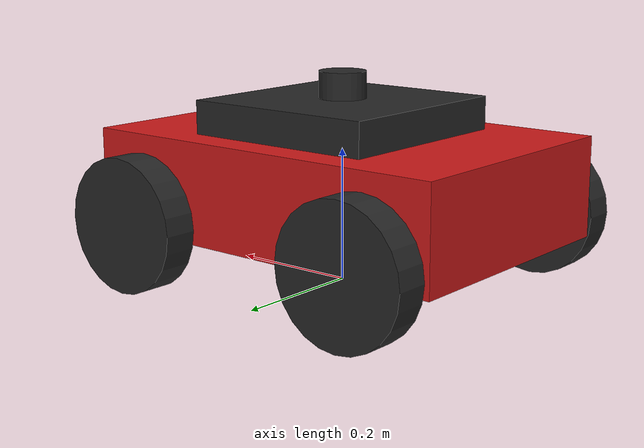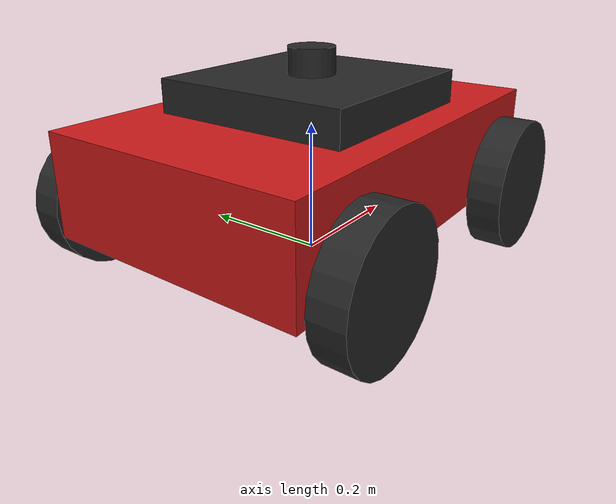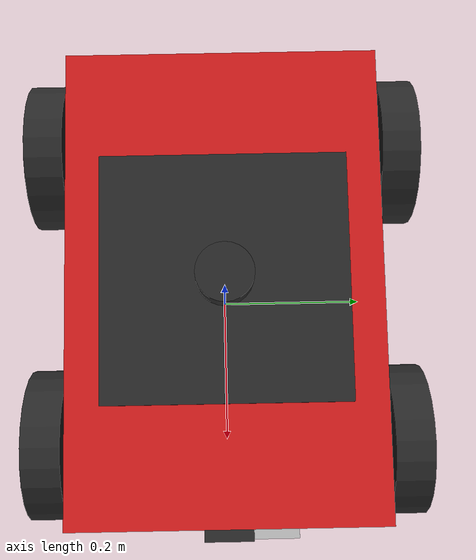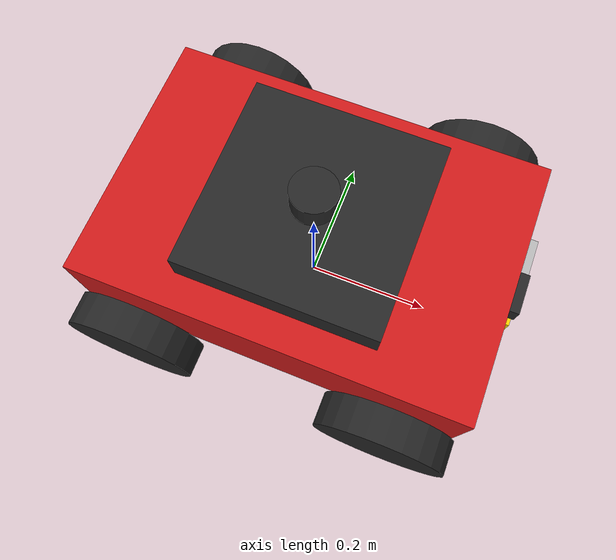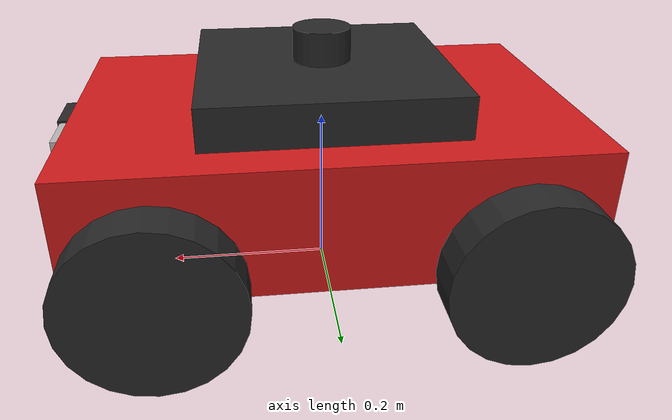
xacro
<?xml version="1.0"?>
<robot name="argos_ugv" xmlns:xacro="http://www.ros.org/wiki/xacro">

  <!-- ===== 파라미터 ===== -->
  <xacro:arg name="use_sim" default="true"/>
  <xacro:arg name="namespace" default=""/>
  <xacro:arg name="robot_name" default="argos_ugv"/>
  <xacro:property name="use_sim" value="$(arg use_sim)"/>
  <xacro:property name="ns" value="$(arg namespace)"/>
  <xacro:property name="robot_name" value="$(arg robot_name)"/>
  <!-- 네임스페이스 접두사: 비어있으면 "" / 있으면 "/ns" -->
  <xacro:property name="topic_prefix" value="${'/' + ns if ns != '' else ''}"/>

  <!-- ===== 1. Platform 계층 ===== -->
  <xacro:include filename="$(find argos_description)/urdf/platform/base.urdf.xacro"/>

  <!-- ===== 2. Sensor 계층 ===== -->
  <xacro:include filename="$(find argos_description)/urdf/sensors/lidar.urdf.xacro"/>
  <xacro:include filename="$(find argos_description)/urdf/sensors/rgb_camera.urdf.xacro"/>
  <xacro:include filename="$(find argos_description)/urdf/sensors/depth_camera.urdf.xacro"/>
  <xacro:include filename="$(find argos_description)/urdf/sensors/imu.urdf.xacro"/>
  <xacro:include filename="$(find argos_description)/urdf/sensors/thermal_camera.urdf.xacro"/>

  <!-- ===== 3. Control 계층 ===== -->
  <xacro:include filename="$(find argos_description)/urdf/control/ros2_control.urdf.xacro"/>

  <!-- ===== 센서 인스턴스화 ===== -->

  <!-- LiDAR: 센서 플랫폼 위 중앙 -->
  <xacro:lidar_sensor
    parent_link="sensor_platform_link"
    xyz="0 0 ${sensor_platform_height/2 + 0.02}"
    topic="${topic_prefix}/scan"/>

  <!-- RGB 카메라: 전방 상단 -->
  <xacro:rgb_camera
    parent_link="base_link"
    xyz="${camera_x} 0 ${camera_z}"
    camera_name="front_camera"
    topic="${topic_prefix}/camera/image_raw"/>

  <!-- 깊이 카메라: RGB 카메라 옆 (RealSense 위치) -->
  <xacro:depth_camera
    parent_link="base_link"
    xyz="${camera_x} 0.04 ${camera_z}"
    camera_name="depth_camera"
    topic="${topic_prefix}/depth_camera"/>

  <!-- IMU: 섀시 중심 -->
  <xacro:imu_sensor
    parent_link="base_link"
    xyz="0 0 0"
    topic="${topic_prefix}/imu/data"/>

  <!-- 열화상 카메라: 전방 하단 (화점 감지용) -->
  <xacro:thermal_camera
    parent_link="base_link"
    xyz="${camera_x} 0 ${-base_height/2 + 0.05}"
    camera_name="thermal_camera"
    topic="${topic_prefix}/thermal/image_raw"/>

  <!-- ===== ros2_control 인스턴스화 ===== -->
  <xacro:argos_ros2_control use_sim="${use_sim}" namespace="${ns}"/>

</robot>

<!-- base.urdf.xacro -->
<!--
  ARGOS UGV 플랫폼 계층
  =======================
  섀시(base_link) + 4개 바퀴 + 센서 플랫폼.
  이 파일은 로봇의 "몸체"만 정의. 센서와 컨트롤러는 별도 xacro.
-->
<robot xmlns:xacro="http://www.ros.org/wiki/xacro">

  <!-- 치수 파라미터 로드 -->
  <xacro:include filename="$(find argos_description)/urdf/platform/dimensions.xacro"/>

  <!--  관성 매크로 (box, cylinder)                                    -->
  <xacro:macro name="box_inertia" params="m x y z">
    <inertial>
      <mass value="${m}"/>
      <inertia
        ixx="${m * (y*y + z*z) / 12.0}" ixy="0" ixz="0"
        iyy="${m * (x*x + z*z) / 12.0}" iyz="0"
        izz="${m * (x*x + y*y) / 12.0}"/>
    </inertial>
  </xacro:macro>

  <xacro:macro name="cylinder_inertia" params="m r h">
    <inertial>
      <mass value="${m}"/>
      <inertia
        ixx="${m * (3*r*r + h*h) / 12.0}" ixy="0" ixz="0"
        iyy="${m * (3*r*r + h*h) / 12.0}" iyz="0"
        izz="${m * r * r / 2.0}"/>
    </inertial>
  </xacro:macro>

  <!--  base_footprint (지면 투영)                                     -->
  <link name="base_footprint"/>

  <joint name="base_footprint_joint" type="fixed">
    <parent link="base_footprint"/>
    <child link="base_link"/>
    <origin xyz="0 0 ${wheel_radius + ground_clearance}" rpy="0 0 0"/>
  </joint>

  <!--  base_link (메인 섀시)                                          -->
  <link name="base_link">
    <visual>
      <geometry>
        <box size="${base_length} ${base_width} ${base_height}"/>
      </geometry>
      <material name="argos_red"/>
    </visual>
    <collision>
      <geometry>
        <box size="${base_length} ${base_width} ${base_height}"/>
      </geometry>
    </collision>
    <xacro:box_inertia m="${base_mass}" x="${base_length}" y="${base_width}" z="${base_height}"/>
  </link>

  <!-- Gazebo 색상 (Gazebo는 URDF material 무시, 별도 지정 필요) -->
  <gazebo reference="base_link">
    <material>
      <ambient>0.8 0.1 0.1 1.0</ambient>
      <diffuse>0.8 0.1 0.1 1.0</diffuse>
    </material>
  </gazebo>

  <!--  센서 플랫폼 (base_link 위 상판)                                -->
  <link name="sensor_platform_link">
    <visual>
      <geometry>
        <box size="${sensor_platform_length} ${sensor_platform_width} ${sensor_platform_height}"/>
      </geometry>
      <material name="argos_dark"/>
    </visual>
    <collision>
      <geometry>
        <box size="${sensor_platform_length} ${sensor_platform_width} ${sensor_platform_height}"/>
      </geometry>
    </collision>
    <xacro:box_inertia m="0.5" x="${sensor_platform_length}" y="${sensor_platform_width}" z="${sensor_platform_height}"/>
  </link>

  <joint name="sensor_platform_joint" type="fixed">
    <parent link="base_link"/>
    <child link="sensor_platform_link"/>
    <origin xyz="0 0 ${sensor_platform_z}" rpy="0 0 0"/>
  </joint>

  <gazebo reference="sensor_platform_link">
    <material>
      <ambient>0.15 0.15 0.15 1.0</ambient>
      <diffuse>0.15 0.15 0.15 1.0</diffuse>
    </material>
  </gazebo>

  <!--  바퀴 매크로                                                    -->
  <xacro:macro name="wheel" params="prefix x_pos y_pos">
    <link name="${prefix}_wheel_link">
      <visual>
        <!-- 바퀴는 Y축 실린더 → 눕히기 위해 roll 90도 -->
        <origin xyz="0 0 0" rpy="${pi/2} 0 0"/>
        <geometry>
          <cylinder radius="${wheel_radius}" length="${wheel_width}"/>
        </geometry>
        <material name="argos_dark"/>
      </visual>
      <collision>
        <origin xyz="0 0 0" rpy="${pi/2} 0 0"/>
        <geometry>
          <cylinder radius="${wheel_radius}" length="${wheel_width}"/>
        </geometry>
      </collision>
      <xacro:cylinder_inertia m="${wheel_mass}" r="${wheel_radius}" h="${wheel_width}"/>
    </link>

    <joint name="${prefix}_wheel_joint" type="continuous">
      <parent link="base_link"/>
      <child link="${prefix}_wheel_link"/>
      <origin xyz="${x_pos} ${y_pos} ${-ground_clearance}" rpy="0 0 0"/>
      <axis xyz="0 1 0"/>
      <dynamics damping="0.1" friction="0.1"/>
    </joint>

    <gazebo reference="${prefix}_wheel_link">
      <material>
        <ambient>0.15 0.15 0.15 1.0</ambient>
        <diffuse>0.15 0.15 0.15 1.0</diffuse>
      </material>
      <mu1>1.0</mu1>
      <mu2>1.0</mu2>
    </gazebo>
  </xacro:macro>

  <!-- 4개 바퀴 인스턴스 -->
  <xacro:wheel prefix="front_left"  x_pos="${wheel_x_offset}"  y_pos="${wheel_y_offset}"/>
  <xacro:wheel prefix="front_right" x_pos="${wheel_x_offset}"  y_pos="${-wheel_y_offset}"/>
  <xacro:wheel prefix="rear_left"   x_pos="${-wheel_x_offset}" y_pos="${wheel_y_offset}"/>
  <xacro:wheel prefix="rear_right"  x_pos="${-wheel_x_offset}" y_pos="${-wheel_y_offset}"/>

</robot>

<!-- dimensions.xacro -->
<robot xmlns:xacro="http://www.ros.org/wiki/xacro">

  <!-- ========== 섀시 ========== -->
  <!-- HW 전문가 권고: 15kg→8kg (알루미늄 6061 프레임 기준, TurtleBot Waffle 스케일링) -->
  <!-- 상세: docs/hardware-design-spec.md 질량 재검증 섹션 -->
  <xacro:property name="base_length"  value="0.60"/>
  <xacro:property name="base_width"   value="0.40"/>
  <xacro:property name="base_height"  value="0.15"/>
  <xacro:property name="base_mass"    value="8.0"/>

  <!-- 지면으로부터 섀시 바닥까지 간격 -->
  <xacro:property name="ground_clearance" value="0.05"/>

  <!-- ========== 바퀴 ========== -->
  <!-- HW 전문가 권고: 1.0kg→0.5kg (소형 UGV 고무 바퀴 기준) -->
  <xacro:property name="wheel_radius"    value="0.10"/>
  <xacro:property name="wheel_width"     value="0.05"/>
  <xacro:property name="wheel_mass"      value="0.5"/>

  <!-- ========== 배터리 (HW 전문가 권고: 신규) ========== -->
  <!-- 4S LiPo 14.8V 10000mAh, ~800g -->
  <xacro:property name="battery_mass"    value="0.8"/>
  <xacro:property name="battery_length"  value="0.15"/>
  <xacro:property name="battery_width"   value="0.08"/>
  <xacro:property name="battery_height"  value="0.05"/>
  <!-- 배터리 위치: 섀시 후방 중앙 (CoG 균형) -->
  <xacro:property name="battery_x"       value="-0.15"/>
  <xacro:property name="battery_z"       value="0.0"/>

  <!-- 바퀴 위치 (섀시 중심 기준) -->
  <xacro:property name="wheel_x_offset"  value="0.20"/>
  <xacro:property name="wheel_y_offset"  value="${base_width / 2 + wheel_width / 2 + 0.01}"/>

  <!-- ========== 센서 플랫폼 ========== -->
  <!-- base_link 위 센서 마운트 상판 -->
  <xacro:property name="sensor_platform_length" value="0.30"/>
  <xacro:property name="sensor_platform_width"  value="0.30"/>
  <xacro:property name="sensor_platform_height" value="0.05"/>
  <xacro:property name="sensor_platform_z"       value="${base_height / 2 + sensor_platform_height / 2}"/>

  <!-- LiDAR: 센서 플랫폼 위 -->
  <xacro:property name="lidar_z" value="${base_height / 2 + sensor_platform_height + 0.02}"/>

  <!-- 카메라: 전방 상단 -->
  <xacro:property name="camera_x" value="${base_length / 2}"/>
  <xacro:property name="camera_z" value="${base_height / 2 - 0.02}"/>

  <!-- IMU: 섀시 중심 -->
  <xacro:property name="imu_z" value="0.0"/>

  <!-- ========== 색상 ========== -->
  <material name="argos_red">
    <color rgba="0.8 0.1 0.1 1.0"/>
  </material>
  <material name="argos_dark">
    <color rgba="0.15 0.15 0.15 1.0"/>
  </material>
  <material name="argos_silver">
    <color rgba="0.7 0.7 0.7 1.0"/>
  </material>
  <material name="argos_yellow">
    <color rgba="1.0 0.8 0.0 1.0"/>
  </material>

</robot>

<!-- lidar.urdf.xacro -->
<!--
  ARGOS LiDAR 센서 매크로
  ========================
  Gazebo Harmonic: 반드시 gpu_lidar 타입 사용 (ray 지원 중단).
  RPLIDAR A2 스펙 기준 (360도, 10Hz, 12m 범위).
-->
<robot xmlns:xacro="http://www.ros.org/wiki/xacro">

  <xacro:macro name="lidar_sensor" params="parent_link xyz:='0 0 0' rpy:='0 0 0' topic:='/scan'">

    <link name="lidar_link">
      <visual>
        <geometry>
          <cylinder radius="0.035" length="0.04"/>
        </geometry>
        <material name="argos_dark"/>
      </visual>
      <collision>
        <geometry>
          <cylinder radius="0.035" length="0.04"/>
        </geometry>
      </collision>
      <inertial>
        <mass value="0.2"/>
        <inertia ixx="0.0001" ixy="0" ixz="0" iyy="0.0001" iyz="0" izz="0.0001"/>
      </inertial>
    </link>

    <joint name="lidar_joint" type="fixed">
      <parent link="${parent_link}"/>
      <child link="lidar_link"/>
      <origin xyz="${xyz}" rpy="${rpy}"/>
    </joint>

    <gazebo reference="lidar_link">
      <material>
        <ambient>0.15 0.15 0.15 1.0</ambient>
        <diffuse>0.15 0.15 0.15 1.0</diffuse>
      </material>
      <sensor name="gpu_lidar" type="gpu_lidar">
        <always_on>true</always_on>
        <update_rate>5</update_rate>  <!-- G-2 RTF: was 10 -->
        <topic>${topic}</topic>
        <gz_frame_id>lidar_link</gz_frame_id>
        <lidar>
          <scan>
            <horizontal>
              <samples>360</samples>
              <resolution>1</resolution>
              <min_angle>-3.14159</min_angle>
              <max_angle>3.14159</max_angle>
            </horizontal>
          </scan>
          <range>
            <min>0.15</min>
            <max>12.0</max>
            <resolution>0.01</resolution>
          </range>
          <noise>
            <type>gaussian</type>
            <mean>0.0</mean>
            <stddev>0.01</stddev>
          </noise>
        </lidar>
      </sensor>
    </gazebo>

  </xacro:macro>

</robot>

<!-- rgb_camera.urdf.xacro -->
<!--
  ARGOS RGB 카메라 매크로
  ========================
  전방 시야 확보용. 640x480 @30fps 기본.
-->
<robot xmlns:xacro="http://www.ros.org/wiki/xacro">

  <xacro:macro name="rgb_camera" params="parent_link xyz:='0 0 0' rpy:='0 0 0' topic:='/camera/image_raw' camera_name:='front_camera'">

    <link name="${camera_name}_link">
      <visual>
        <geometry>
          <box size="0.03 0.06 0.03"/>
        </geometry>
        <material name="argos_dark"/>
      </visual>
      <collision>
        <geometry>
          <box size="0.03 0.06 0.03"/>
        </geometry>
      </collision>
      <inertial>
        <mass value="0.1"/>
        <inertia ixx="0.00001" ixy="0" ixz="0" iyy="0.00001" iyz="0" izz="0.00001"/>
      </inertial>
    </link>

    <!-- 카메라 광학 프레임 (Z forward, X right, Y down) -->
    <link name="${camera_name}_optical_link"/>

    <joint name="${camera_name}_joint" type="fixed">
      <parent link="${parent_link}"/>
      <child link="${camera_name}_link"/>
      <origin xyz="${xyz}" rpy="${rpy}"/>
    </joint>

    <joint name="${camera_name}_optical_joint" type="fixed">
      <parent link="${camera_name}_link"/>
      <child link="${camera_name}_optical_link"/>
      <!-- ROS 카메라 관례: Z=전방, X=우측, Y=하단 -->
      <origin xyz="0 0 0" rpy="${-pi/2} 0 ${-pi/2}"/>
    </joint>

    <gazebo reference="${camera_name}_link">
      <material>
        <ambient>0.15 0.15 0.15 1.0</ambient>
        <diffuse>0.15 0.15 0.15 1.0</diffuse>
      </material>
      <sensor name="${camera_name}" type="camera">
        <always_on>true</always_on>
        <update_rate>15</update_rate>  <!-- G-2 RTF: was 30 -->
        <topic>${topic}</topic>
        <gz_frame_id>${camera_name}_optical_link</gz_frame_id>
        <camera>
          <horizontal_fov>1.7453293</horizontal_fov>  <!-- 100° (HW 전문가 권고: 80°→100°) -->
          <image>
            <width>640</width>
            <height>480</height>
            <format>R8G8B8</format>
          </image>
          <clip>
            <near>0.1</near>
            <far>100.0</far>
          </clip>
          <noise>
            <type>gaussian</type>
            <mean>0.0</mean>
            <stddev>0.007</stddev>
          </noise>
        </camera>
      </sensor>
    </gazebo>

  </xacro:macro>

</robot>

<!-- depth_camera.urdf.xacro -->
<!--
  ARGOS 깊이 카메라 매크로
  =========================
  Intel RealSense D435 스펙 기준.
  RGB + Depth + PointCloud 동시 출력.
-->
<robot xmlns:xacro="http://www.ros.org/wiki/xacro">

  <xacro:macro name="depth_camera" params="parent_link xyz:='0 0 0' rpy:='0 0 0' topic:='/depth_camera' camera_name:='depth_camera'">

    <link name="${camera_name}_link">
      <visual>
        <geometry>
          <box size="0.025 0.09 0.025"/>
        </geometry>
        <material name="argos_silver"/>
      </visual>
      <collision>
        <geometry>
          <box size="0.025 0.09 0.025"/>
        </geometry>
      </collision>
      <inertial>
        <mass value="0.15"/>
        <inertia ixx="0.00001" ixy="0" ixz="0" iyy="0.00001" iyz="0" izz="0.00001"/>
      </inertial>
    </link>

    <link name="${camera_name}_optical_link"/>

    <joint name="${camera_name}_joint" type="fixed">
      <parent link="${parent_link}"/>
      <child link="${camera_name}_link"/>
      <origin xyz="${xyz}" rpy="${rpy}"/>
    </joint>

    <joint name="${camera_name}_optical_joint" type="fixed">
      <parent link="${camera_name}_link"/>
      <child link="${camera_name}_optical_link"/>
      <origin xyz="0 0 0" rpy="${-pi/2} 0 ${-pi/2}"/>
    </joint>

    <gazebo reference="${camera_name}_link">
      <material>
        <ambient>0.7 0.7 0.7 1.0</ambient>
        <diffuse>0.7 0.7 0.7 1.0</diffuse>
      </material>
      <sensor name="${camera_name}" type="depth_camera">
        <always_on>true</always_on>
        <update_rate>10</update_rate>  <!-- G-2 RTF: was 15 -->
        <topic>${topic}</topic>
        <gz_frame_id>${camera_name}_optical_link</gz_frame_id>
        <camera>
          <horizontal_fov>1.5009831</horizontal_fov>
          <image>
            <width>640</width>
            <height>480</height>
            <format>R8G8B8</format>
          </image>
          <clip>
            <near>0.1</near>
            <far>10.0</far>
          </clip>
          <noise>
            <type>gaussian</type>
            <mean>0.0</mean>
            <stddev>0.005</stddev>
          </noise>
        </camera>
      </sensor>
    </gazebo>

  </xacro:macro>

</robot>

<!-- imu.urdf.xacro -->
<!--
  ARGOS IMU 센서 매크로
  ======================
  로봇 중심에 장착. 자세(orientation) + 각속도 + 선가속도 측정.
-->
<robot xmlns:xacro="http://www.ros.org/wiki/xacro">

  <xacro:macro name="imu_sensor" params="parent_link xyz:='0 0 0' rpy:='0 0 0' topic:='/imu/data'">

    <link name="imu_link">
      <visual>
        <geometry>
          <box size="0.02 0.02 0.01"/>
        </geometry>
        <material name="argos_yellow"/>
      </visual>
      <collision>
        <geometry>
          <box size="0.02 0.02 0.01"/>
        </geometry>
      </collision>
      <inertial>
        <mass value="0.01"/>
        <inertia ixx="0.000001" ixy="0" ixz="0" iyy="0.000001" iyz="0" izz="0.000001"/>
      </inertial>
    </link>

    <joint name="imu_joint" type="fixed">
      <parent link="${parent_link}"/>
      <child link="imu_link"/>
      <origin xyz="${xyz}" rpy="${rpy}"/>
    </joint>

    <gazebo reference="imu_link">
      <material>
        <ambient>1.0 0.8 0.0 1.0</ambient>
        <diffuse>1.0 0.8 0.0 1.0</diffuse>
      </material>
      <sensor name="imu" type="imu">
        <always_on>true</always_on>
        <update_rate>50</update_rate>  <!-- G-2 RTF: was 100 -->
        <topic>${topic}</topic>
        <gz_frame_id>imu_link</gz_frame_id>
        <imu>
          <angular_velocity>
            <x><noise type="gaussian"><mean>0</mean><stddev>0.0002</stddev></noise></x>
            <y><noise type="gaussian"><mean>0</mean><stddev>0.0002</stddev></noise></y>
            <z><noise type="gaussian"><mean>0</mean><stddev>0.0002</stddev></noise></z>
          </angular_velocity>
          <linear_acceleration>
            <x><noise type="gaussian"><mean>0</mean><stddev>0.017</stddev></noise></x>
            <y><noise type="gaussian"><mean>0</mean><stddev>0.017</stddev></noise></y>
            <z><noise type="gaussian"><mean>0</mean><stddev>0.017</stddev></noise></z>
          </linear_acceleration>
        </imu>
      </sensor>
    </gazebo>

  </xacro:macro>

</robot>

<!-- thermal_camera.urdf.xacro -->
<!--
  ARGOS 열화상 카메라 매크로
  ===========================
  소방 현장 핵심 센서.
  Gazebo Harmonic의 thermal_camera 센서 타입 사용.

  참고: Gazebo에서 thermal_camera가 작동하려면 월드에
  온도 속성을 가진 모델이 필요. 없으면 일반 카메라로 fallback.
-->
<robot xmlns:xacro="http://www.ros.org/wiki/xacro">

  <xacro:macro name="thermal_camera" params="parent_link xyz:='0 0 0' rpy:='0 0 0' topic:='/thermal/image_raw' camera_name:='thermal_camera'">

    <link name="${camera_name}_link">
      <visual>
        <geometry>
          <box size="0.04 0.05 0.04"/>
        </geometry>
        <material name="argos_yellow"/>
      </visual>
      <collision>
        <geometry>
          <box size="0.04 0.05 0.04"/>
        </geometry>
      </collision>
      <inertial>
        <mass value="0.2"/>
        <inertia ixx="0.00001" ixy="0" ixz="0" iyy="0.00001" iyz="0" izz="0.00001"/>
      </inertial>
    </link>

    <link name="${camera_name}_optical_link"/>

    <joint name="${camera_name}_joint" type="fixed">
      <parent link="${parent_link}"/>
      <child link="${camera_name}_link"/>
      <origin xyz="${xyz}" rpy="${rpy}"/>
    </joint>

    <joint name="${camera_name}_optical_joint" type="fixed">
      <parent link="${camera_name}_link"/>
      <child link="${camera_name}_optical_link"/>
      <origin xyz="0 0 0" rpy="${-pi/2} 0 ${-pi/2}"/>
    </joint>

    <gazebo reference="${camera_name}_link">
      <material>
        <ambient>1.0 0.8 0.0 1.0</ambient>
        <diffuse>1.0 0.8 0.0 1.0</diffuse>
      </material>
      <sensor name="${camera_name}" type="thermal_camera">
        <always_on>true</always_on>
        <!-- HW 전문가 권고: 10→20Hz (화점 이동 추적 정밀도 향상) -->
        <update_rate>10</update_rate>  <!-- G-2 RTF: was 20 -->
        <topic>${topic}</topic>
        <gz_frame_id>${camera_name}_optical_link</gz_frame_id>
        <camera>
          <horizontal_fov>0.6981317</horizontal_fov>
          <image>
            <width>320</width>
            <height>240</height>
            <format>L8</format>
          </image>
          <clip>
            <near>0.1</near>
            <far>50.0</far>
          </clip>
        </camera>
      </sensor>
    </gazebo>

  </xacro:macro>

</robot>
